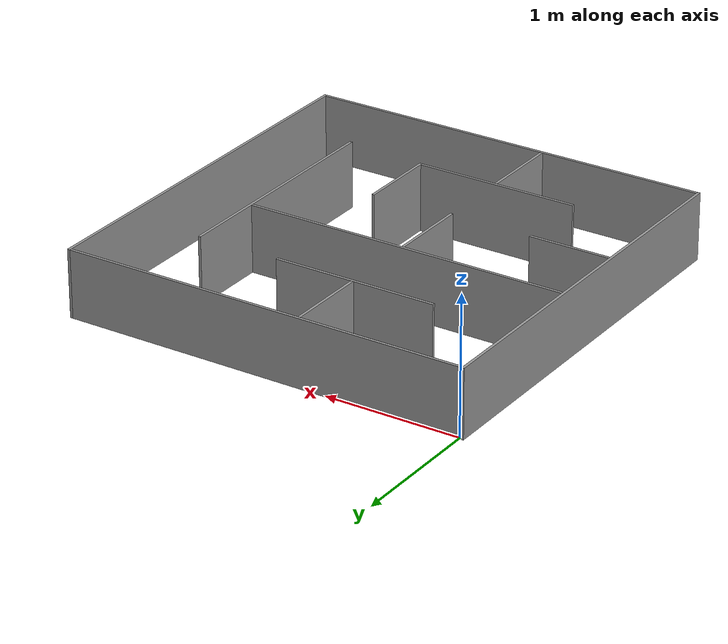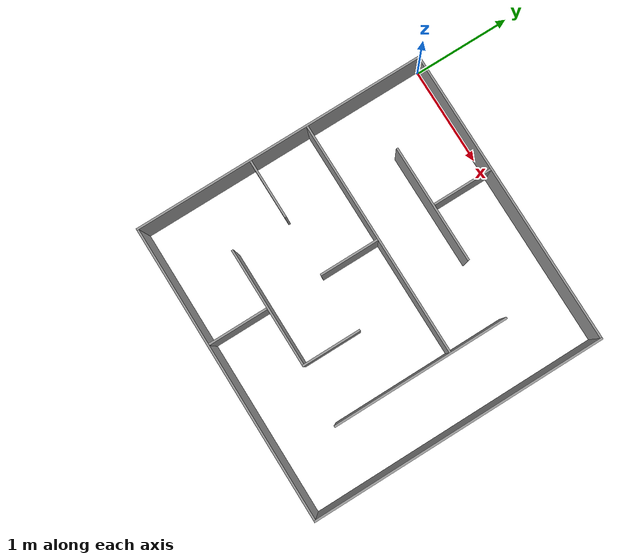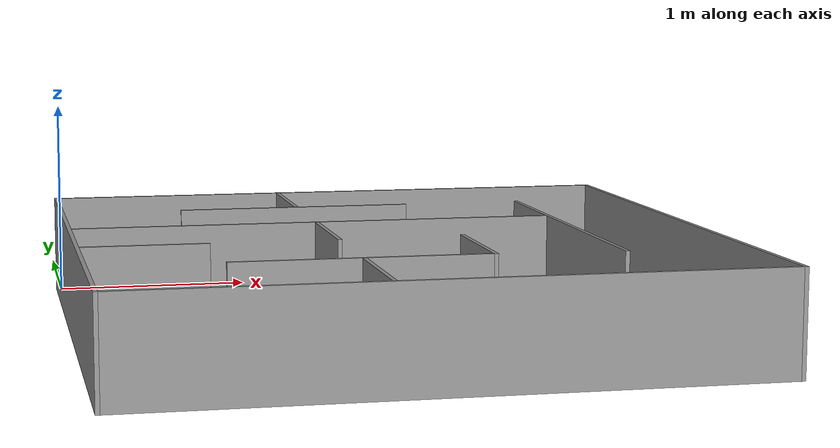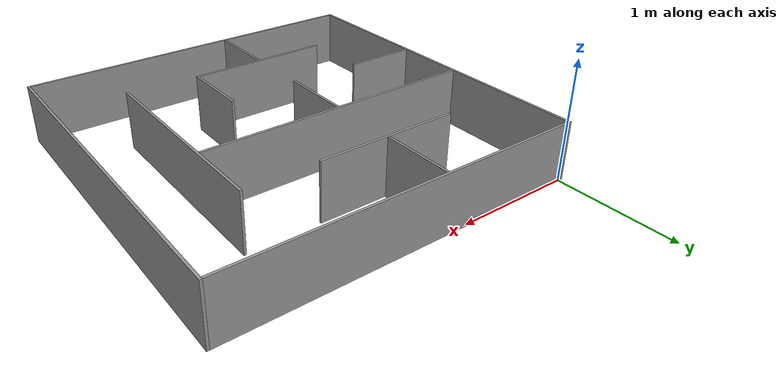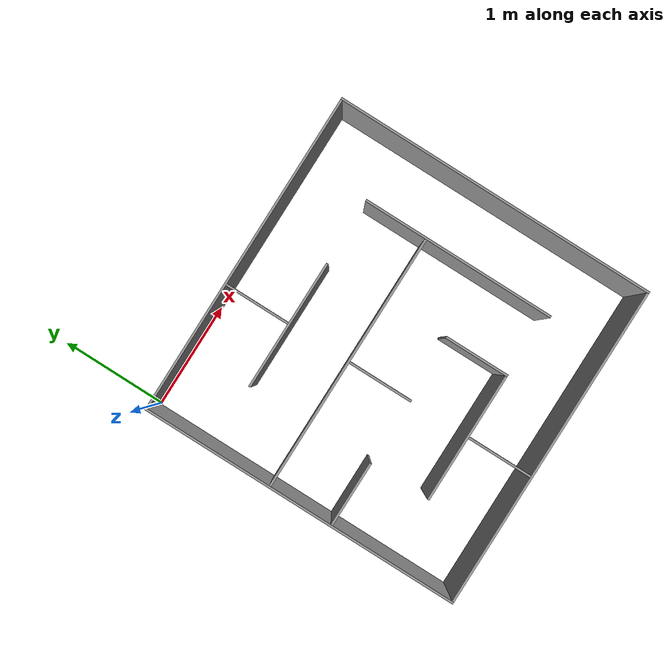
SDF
<?xml version='1.0'?>
<sdf version='1.7'>
  <model name='reto_real_cercano'>
    <pose>1.49 -1.49 0 0 -0 0</pose>
    <link name='Wall_0'>
      <collision name='Wall_0_Collision'>
        <geometry>
          <box>
            <size>3 0.02 0.5</size>
          </box>
        </geometry>
        <pose>0 0 0.25 0 -0 0</pose>
      </collision>
      <visual name='Wall_0_Visual'>
        <pose>0 0 0.25 0 -0 0</pose>
        <geometry>
          <box>
            <size>3 0.02 0.5</size>
          </box>
        </geometry>
        <material>
          <script>
            <uri>file://media/materials/scripts/gazebo.material</uri>
            <name>Gazebo/Grey</name>
          </script>
          <ambient>1 1 1 1</ambient>
        </material>
        <meta>
          <layer>0</layer>
        </meta>
      </visual>
      <pose>-0 1.49 0 0 -0 0</pose>
    </link>
    <link name='Wall_10'>
      <collision name='Wall_10_Collision'>
        <geometry>
          <box>
            <size>3 0.02 0.5</size>
          </box>
        </geometry>
        <pose>0 0 0.25 0 -0 0</pose>
      </collision>
      <visual name='Wall_10_Visual'>
        <pose>0 0 0.25 0 -0 0</pose>
        <geometry>
          <box>
            <size>3 0.02 0.5</size>
          </box>
        </geometry>
        <material>
          <script>
            <uri>file://media/materials/scripts/gazebo.material</uri>
            <name>Gazebo/Grey</name>
          </script>
          <ambient>1 1 1 1</ambient>
        </material>
        <meta>
          <layer>0</layer>
        </meta>
      </visual>
      <pose>-1.51 0 0 0 -0 1.5708</pose>
    </link>
    <link name='Wall_12'>
      <collision name='Wall_12_Collision'>
        <geometry>
          <box>
            <size>0.6 0.02 0.5</size>
          </box>
        </geometry>
        <pose>0 0 0.25 0 -0 0</pose>
      </collision>
      <visual name='Wall_12_Visual'>
        <pose>0 0 0.25 0 -0 0</pose>
        <geometry>
          <box>
            <size>0.6 0.02 0.5</size>
          </box>
        </geometry>
        <material>
          <script>
            <uri>file://media/materials/scripts/gazebo.material</uri>
            <name>Gazebo/Grey</name>
          </script>
          <ambient>1 1 1 1</ambient>
        </material>
        <meta>
          <layer>0</layer>
        </meta>
      </visual>
      <pose>-0.29 1.18 0 0 -0 -1.5708</pose>
    </link>
    <link name='Wall_14'>
      <collision name='Wall_14_Collision'>
        <geometry>
          <box>
            <size>1.2 0.02 0.5</size>
          </box>
        </geometry>
        <pose>0 0 0.25 0 -0 0</pose>
      </collision>
      <visual name='Wall_14_Visual'>
        <pose>0 0 0.25 0 -0 0</pose>
        <geometry>
          <box>
            <size>1.2 0.02 0.5</size>
          </box>
        </geometry>
        <material>
          <script>
            <uri>file://media/materials/scripts/gazebo.material</uri>
            <name>Gazebo/Grey</name>
          </script>
          <ambient>1 1 1 1</ambient>
        </material>
        <meta>
          <layer>0</layer>
        </meta>
      </visual>
      <pose>-0.3 0.87 0 0 -0 0</pose>
    </link>
    <link name='Wall_16'>
      <collision name='Wall_16_Collision'>
        <geometry>
          <box>
            <size>2.4 0.02 0.5</size>
          </box>
        </geometry>
        <pose>0 0 0.25 0 -0 0</pose>
      </collision>
      <visual name='Wall_16_Visual'>
        <pose>0 0 0.25 0 -0 0</pose>
        <geometry>
          <box>
            <size>2.4 0.02 0.5</size>
          </box>
        </geometry>
        <material>
          <script>
            <uri>file://media/materials/scripts/gazebo.material</uri>
            <name>Gazebo/Grey</name>
          </script>
          <ambient>1 1 1 1</ambient>
        </material>
        <meta>
          <layer>0</layer>
        </meta>
      </visual>
      <pose>-0.3 0.29 0 0 -0 0</pose>
    </link>
    <link name='Wall_18'>
      <collision name='Wall_18_Collision'>
        <geometry>
          <box>
            <size>1.8 0.02 0.5</size>
          </box>
        </geometry>
        <pose>0 0 0.25 0 -0 0</pose>
      </collision>
      <visual name='Wall_18_Visual'>
        <pose>0 0 0.25 0 -0 0</pose>
        <geometry>
          <box>
            <size>1.8 0.02 0.5</size>
          </box>
        </geometry>
        <material>
          <script>
            <uri>file://media/materials/scripts/gazebo.material</uri>
            <name>Gazebo/Grey</name>
          </script>
          <ambient>1 1 1 1</ambient>
        </material>
        <meta>
          <layer>0</layer>
        </meta>
      </visual>
      <pose>0.91 -0.02 0 0 -0 -1.5708</pose>
    </link>
    <link name='Wall_2'>
      <collision name='Wall_2_Collision'>
        <geometry>
          <box>
            <size>3 0.02 0.5</size>
          </box>
        </geometry>
        <pose>0 0 0.25 0 -0 0</pose>
      </collision>
      <visual name='Wall_2_Visual'>
        <pose>0 0 0.25 0 -0 0</pose>
        <geometry>
          <box>
            <size>3 0.02 0.5</size>
          </box>
        </geometry>
        <material>
          <script>
            <uri>file://media/materials/scripts/gazebo.material</uri>
            <name>Gazebo/Grey</name>
          </script>
          <ambient>1 1 1 1</ambient>
        </material>
        <meta>
          <layer>0</layer>
        </meta>
      </visual>
      <pose>1.51 0 0 0 -0 -1.5708</pose>
    </link>
    <link name='Wall_20'>
      <collision name='Wall_20_Collision'>
        <geometry>
          <box>
            <size>0.6 0.02 0.5</size>
          </box>
        </geometry>
        <pose>0 0 0.25 0 -0 0</pose>
      </collision>
      <visual name='Wall_20_Visual'>
        <pose>0 0 0.25 0 -0 0</pose>
        <geometry>
          <box>
            <size>0.6 0.02 0.5</size>
          </box>
        </geometry>
        <material>
          <script>
            <uri>file://media/materials/scripts/gazebo.material</uri>
            <name>Gazebo/Grey</name>
          </script>
          <ambient>1 1 1 1</ambient>
        </material>
        <meta>
          <layer>0</layer>
        </meta>
      </visual>
      <pose>-0.29 -0.02 0 0 -0 -1.5708</pose>
    </link>
    <link name='Wall_22'>
      <collision name='Wall_22_Collision'>
        <geometry>
          <box>
            <size>0.6 0.02 0.5</size>
          </box>
        </geometry>
        <pose>0 0 0.25 0 -0 0</pose>
      </collision>
      <visual name='Wall_22_Visual'>
        <pose>0 0 0.25 0 -0 0</pose>
        <geometry>
          <box>
            <size>0.6 0.02 0.5</size>
          </box>
        </geometry>
        <material>
          <script>
            <uri>file://media/materials/scripts/gazebo.material</uri>
            <name>Gazebo/Grey</name>
          </script>
          <ambient>1 1 1 1</ambient>
        </material>
        <meta>
          <layer>0</layer>
        </meta>
      </visual>
      <pose>-1.2 -0.31 0 0 -0 0</pose>
    </link>
    <link name='Wall_24'>
      <collision name='Wall_24_Collision'>
        <geometry>
          <box>
            <size>0.6 0.02 0.5</size>
          </box>
        </geometry>
        <pose>0 0 0.25 0 -0 0</pose>
      </collision>
      <visual name='Wall_24_Visual'>
        <pose>0 0 0.25 0 -0 0</pose>
        <geometry>
          <box>
            <size>0.6 0.02 0.5</size>
          </box>
        </geometry>
        <material>
          <script>
            <uri>file://media/materials/scripts/gazebo.material</uri>
            <name>Gazebo/Grey</name>
          </script>
          <ambient>1 1 1 1</ambient>
        </material>
        <meta>
          <layer>0</layer>
        </meta>
      </visual>
      <pose>-0.29 -1.18 0 0 -0 1.5708</pose>
    </link>
    <link name='Wall_26'>
      <collision name='Wall_26_Collision'>
        <geometry>
          <box>
            <size>1.2 0.02 0.5</size>
          </box>
        </geometry>
        <pose>0 0 0.25 0 -0 0</pose>
      </collision>
      <visual name='Wall_26_Visual'>
        <pose>0 0 0.25 0 -0 0</pose>
        <geometry>
          <box>
            <size>1.2 0.02 0.5</size>
          </box>
        </geometry>
        <material>
          <script>
            <uri>file://media/materials/scripts/gazebo.material</uri>
            <name>Gazebo/Grey</name>
          </script>
          <ambient>1 1 1 1</ambient>
        </material>
        <meta>
          <layer>0</layer>
        </meta>
      </visual>
      <pose>-0.3 -0.87 0 0 -0 0</pose>
    </link>
    <link name='Wall_28'>
      <collision name='Wall_28_Collision'>
        <geometry>
          <box>
            <size>0.6 0.02 0.5</size>
          </box>
        </geometry>
        <pose>0 0 0.25 0 -0 0</pose>
      </collision>
      <visual name='Wall_28_Visual'>
        <pose>0 0 0.25 0 -0 0</pose>
        <geometry>
          <box>
            <size>0.6 0.02 0.5</size>
          </box>
        </geometry>
        <material>
          <script>
            <uri>file://media/materials/scripts/gazebo.material</uri>
            <name>Gazebo/Grey</name>
          </script>
          <ambient>1 1 1 1</ambient>
        </material>
        <meta>
          <layer>0</layer>
        </meta>
      </visual>
      <pose>0.31 -0.58 0 0 -0 -1.5708</pose>
    </link>
    <link name='Wall_8'>
      <collision name='Wall_8_Collision'>
        <geometry>
          <box>
            <size>3 0.02 0.5</size>
          </box>
        </geometry>
        <pose>0 0 0.25 0 -0 0</pose>
      </collision>
      <visual name='Wall_8_Visual'>
        <pose>0 0 0.25 0 -0 0</pose>
        <geometry>
          <box>
            <size>3 0.02 0.5</size>
          </box>
        </geometry>
        <material>
          <script>
            <uri>file://media/materials/scripts/gazebo.material</uri>
            <name>Gazebo/Grey</name>
          </script>
          <ambient>1 1 1 1</ambient>
        </material>
        <meta>
          <layer>0</layer>
        </meta>
      </visual>
      <pose>-0 -1.49 0 0 -0 3.14159</pose>
    </link>
    <static>1</static>
  </model>
</sdf>
